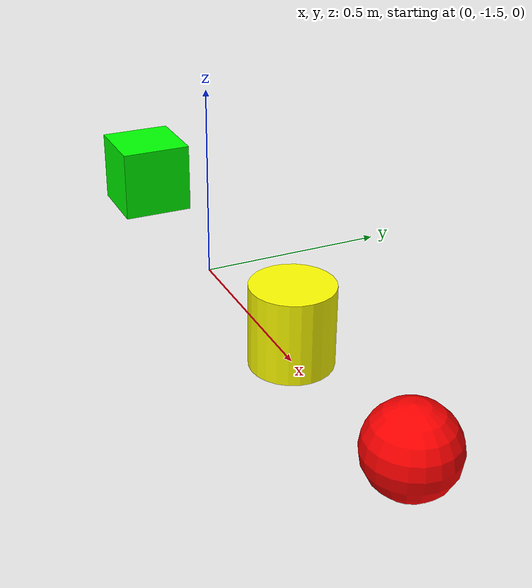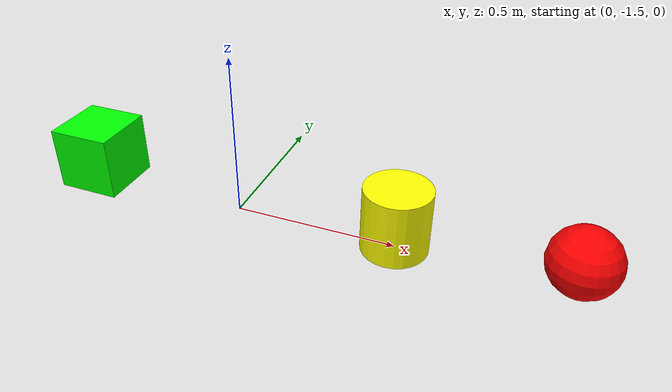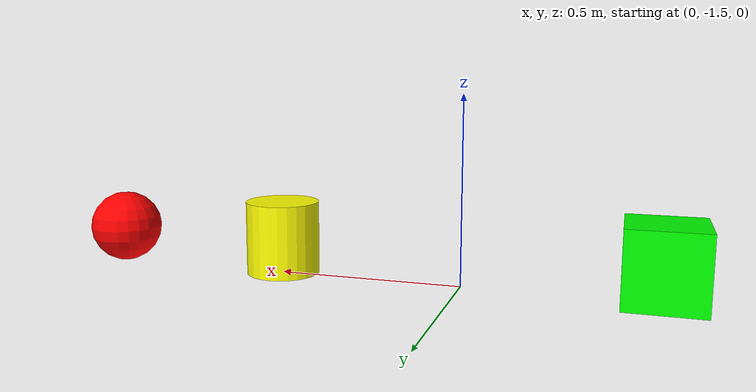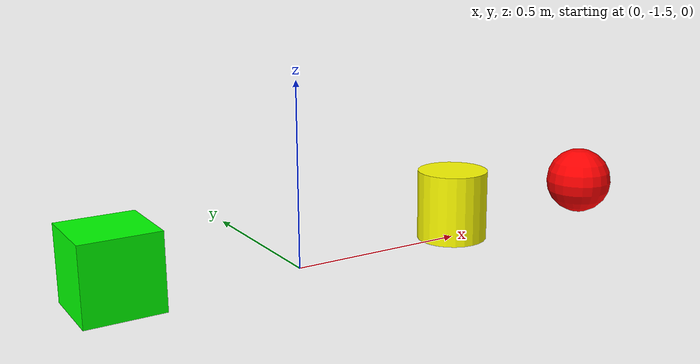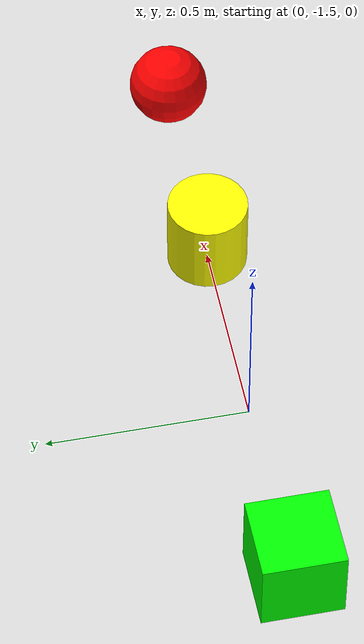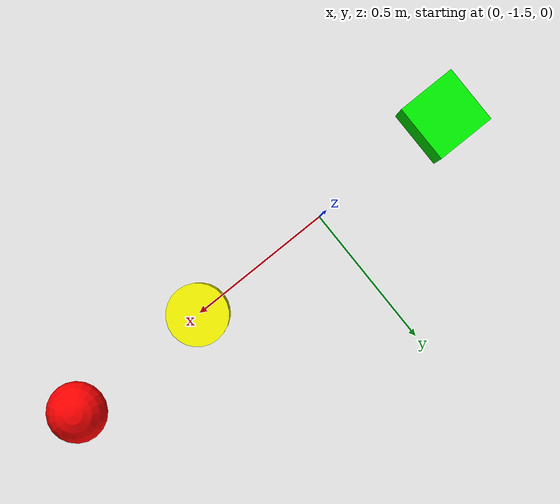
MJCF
<mujoco model="table">
    <compiler angle="radian" balanceinertia="true"/>

    <worldbody>
        <body name="box_green" pos="-0.5 -1.5 0.1">
          <geom name="box_green" type="box" size="0.1 0.1 0.1" rgba="0.0 1.0 0.0 1"/>
        </body>
        <body name="sphere_red" pos="1.0 -1.5 0.1">
          <geom name="sphere_red" type="sphere" size="0.1" rgba="1.0 0.0 0.0 1"/>
        </body>
        <body name="cylinder_yellow" pos="0.5 -1.5 0.1">
          <geom name="cylinder_yellow" type="cylinder" size="0.1 0.1" rgba="1.0 1.0 0.0 1"/>
        </body>
    </worldbody>

</mujoco>
